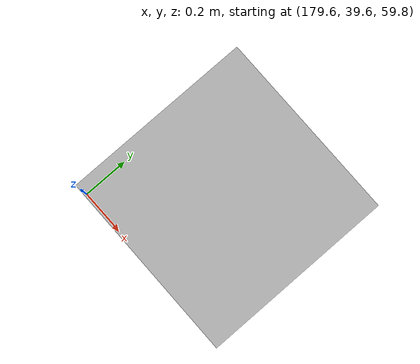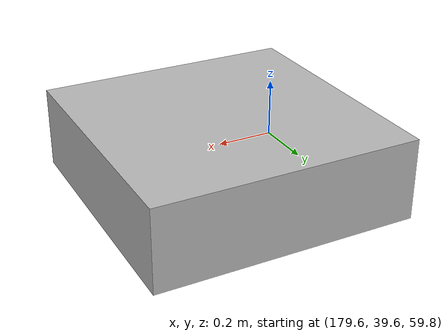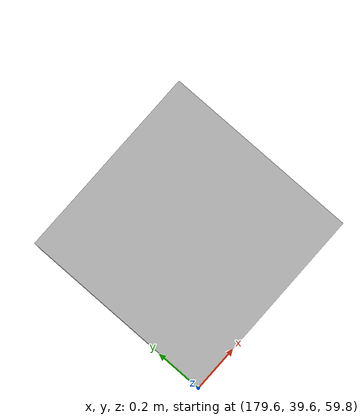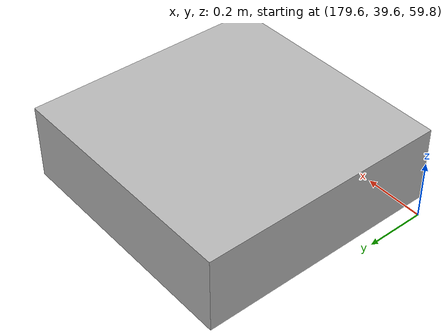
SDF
<?xml version="1.0" ?>
<sdf version="1.9">
  <world name="clearsky_cuas">
    <physics name="1ms" type="ignored">
      <max_step_size>0.001</max_step_size>
      <real_time_factor>1.0</real_time_factor>
    </physics>
    <plugin filename="gz-sim-physics-system" name="gz::sim::systems::Physics"/>
    <plugin filename="gz-sim-user-commands-system" name="gz::sim::systems::UserCommands"/>
    <plugin filename="gz-sim-scene-broadcaster-system" name="gz::sim::systems::SceneBroadcaster"/>

    <light type="directional" name="sun">
      <cast_shadows>true</cast_shadows>
      <pose>0 0 10 0 0 0</pose>
      <diffuse>0.8 0.8 0.8 1</diffuse>
      <direction>-0.5 0.1 -0.9</direction>
    </light>

    <model name="protected_asset">
      <static>true</static>
      <pose>0 0 0 0 0 0</pose>
      <link name="link">
        <visual name="visual">
          <geometry><cylinder><radius>25</radius><length>2</length></cylinder></geometry>
        </visual>
        <collision name="collision">
          <geometry><cylinder><radius>25</radius><length>2</length></cylinder></geometry>
        </collision>
      </link>
    </model>

    <!-- Initial pose matches kinematics.truth_at(t=0) defaults -->
    <model name="uas_inbound_01">
      <pose>180 40 60 0 0 0</pose>
      <link name="link">
        <inertial>
          <mass>2.0</mass>
          <inertia>
            <ixx>0.02</ixx><iyy>0.02</iyy><izz>0.04</izz>
          </inertia>
        </inertial>
        <visual name="visual">
          <geometry><box><size>0.8 0.8 0.25</size></box></geometry>
        </visual>
        <collision name="collision">
          <geometry><box><size>0.8 0.8 0.25</size></box></geometry>
        </collision>
      </link>
      <!-- Constant velocity plugin placeholder; bridge may drive pose externally -->
      <plugin filename="gz-sim-velocity-control-system" name="gz::sim::systems::VelocityControl">
        <linear> -12 2 0 </linear>
      </plugin>
    </model>
  </world>
</sdf>
